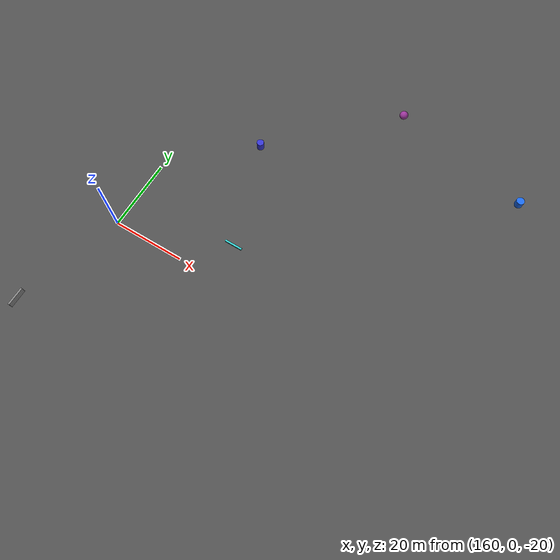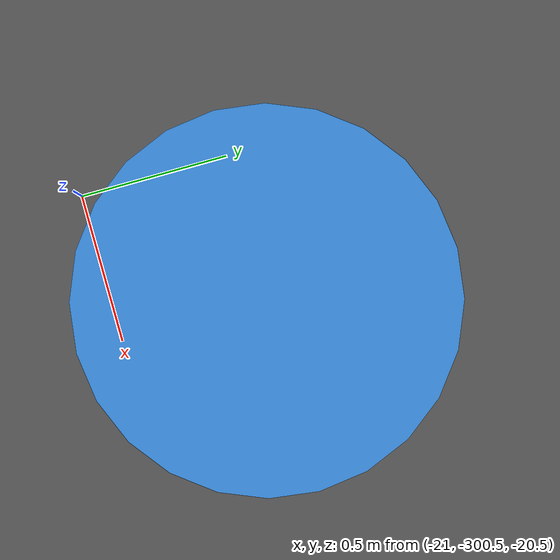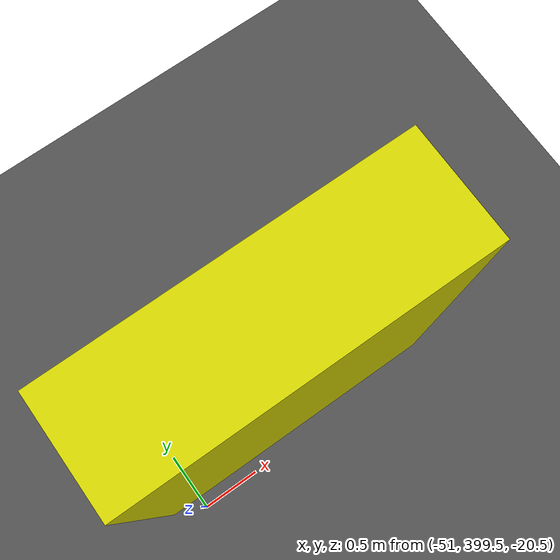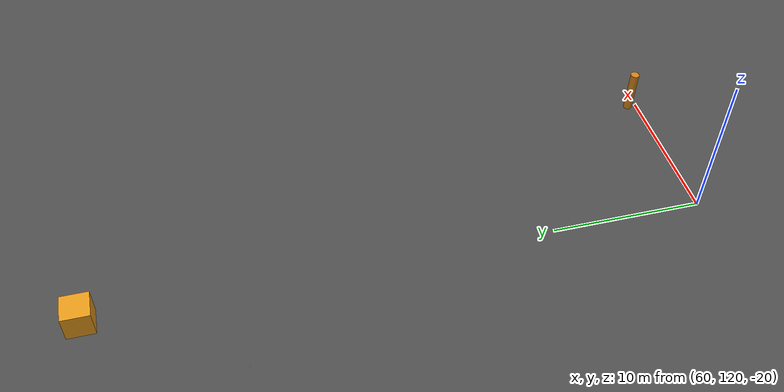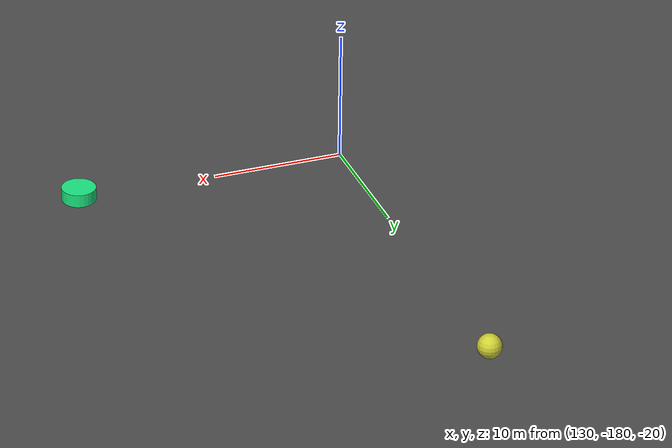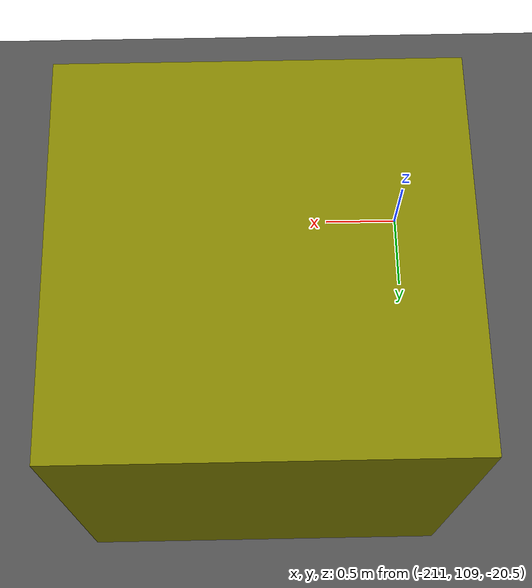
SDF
<?xml version="1.0" ?>
<sdf version="1.6">
  <world name="static_world">
    <physics name="default" type="ode">
      <max_step_size>0.001</max_step_size>
      <real_time_factor>1.0</real_time_factor>
    </physics>

    <plugin filename="gz-sim-physics-system" name="gz::sim::systems::Physics"/>
    <plugin filename="gz-sim-user-commands-system" name="gz::sim::systems::UserCommands"/>
    <plugin filename="gz-sim-scene-broadcaster-system" name="gz::sim::systems::SceneBroadcaster"/>
    <plugin filename="gz-sim-buoyancy-system" name="gz::sim::systems::Buoyancy">
      <uniform_fluid_density>1000</uniform_fluid_density>
    </plugin>

    <plugin filename="gz-sim-apply-link-wrench-system" name="gz::sim::systems::ApplyLinkWrench"/>

    <light type="directional" name="sun">
      <pose>0 0 10 0 0 0</pose>
      <diffuse>1 1 1 1</diffuse>
      <specular>0.5 0.5 0.5 1</specular>
      <attenuation><range>1000</range><constant>0.9</constant><linear>0.01</linear><quadratic>0.001</quadratic></attenuation>
      <direction>-0.5 0.1 -0.9</direction>
    </light>

    <!-- Дно (плоскость) -->
    <model name="ground_plane">
    <pose>0 0 -50 0 0 0</pose>
      <static>true</static>
      <link name="ground_link">
        <collision name="collision">
          <geometry><plane><normal>0 0 1</normal><size>1000 1000</size></plane></geometry>
        </collision>
        <visual name="visual">
          <geometry><plane><normal>0 0 1</normal><size>1000 1000</size></plane></geometry>
          <material><ambient>0.3 0.3 0.3 1</ambient><diffuse>0.3 0.3 0.3 1</diffuse></material>
        </visual>
      </link>
    </model>

    <!-- 50 статических объектов (разные формы, размеры, расположены случайно в пределах -200..200 по X,Y, на глубине -19..-18) -->
    <!-- Объект 1: большой куб -->
    <model name="obj_01">
      <static>true</static>
      <pose>-150.2 80.5 -19.2 0 0 0</pose>
      <link name="link"><visual name="visual"><geometry><box><size>2.0 2.0 2.0</size></box></geometry><material><ambient>0.8 0.2 0.2 1</ambient></material></visual><collision name="collision"><geometry><box><size>2.0 2.0 2.0</size></box></geometry></collision></link>
    </model>

    <!-- Объект 2: сфера -->
    <model name="obj_02">
      <static>true</static>
      <pose>-120.5 -90.3 -19.5 0 0 0</pose>
      <link name="link"><visual name="visual"><geometry><sphere><radius>1.5</radius></sphere></geometry><material><ambient>0.2 0.8 0.2 1</ambient></material></visual><collision name="collision"><geometry><sphere><radius>1.5</radius></sphere></geometry></collision></link>
    </model>

    <!-- Объект 3: цилиндр -->
    <model name="obj_03">
      <static>true</static>
      <pose>180.2 40.1 -19.0 0 0 0</pose>
      <link name="link"><visual name="visual"><geometry><cylinder><radius>1.0</radius><length>2.5</length></cylinder></geometry><material><ambient>0.2 0.2 0.8 1</ambient></material></visual><collision name="collision"><geometry><cylinder><radius>1.0</radius><length>2.5</length></cylinder></geometry></collision></link>
    </model>

    <!-- Объект 4: плоский куб -->
    <model name="obj_04">
      <static>true</static>
      <pose>-50.0 -150.2 -19.3 0 0 0</pose>
      <link name="link"><visual name="visual"><geometry><box><size>3.0 3.0 0.5</size></box></geometry><material><ambient>0.8 0.8 0.2 1</ambient></material></visual><collision name="collision"><geometry><box><size>3.0 3.0 0.5</size></box></geometry></collision></link>
    </model>

    <!-- Объект 5: тонкий цилиндр (столб) -->
    <model name="obj_05">
      <static>true</static>
      <pose>70.3 120.4 -18.8 0 0 0</pose>
      <link name="link"><visual name="visual"><geometry><cylinder><radius>0.3</radius><length>3.0</length></cylinder></geometry><material><ambient>0.8 0.5 0.1 1</ambient></material></visual><collision name="collision"><geometry><cylinder><radius>0.3</radius><length>3.0</length></cylinder></geometry></collision></link>
    </model>

    <!-- Объект 6: большой шар -->
    <model name="obj_06">
      <static>true</static>
      <pose>-180.0 -50.6 -19.7 0 0 0</pose>
      <link name="link"><visual name="visual"><geometry><sphere><radius>2.0</radius></sphere></geometry><material><ambient>0.6 0.3 0.9 1</ambient></material></visual><collision name="collision"><geometry><sphere><radius>2.0</radius></sphere></geometry></collision></link>
    </model>

    <!-- Объект 7: длинный куб -->
    <model name="obj_07">
      <static>true</static>
      <pose>90.8 -110.2 -19.4 0 0 0</pose>
      <link name="link"><visual name="visual"><geometry><box><size>4.0 1.0 1.0</size></box></geometry><material><ambient>0.1 0.6 0.6 1</ambient></material></visual><collision name="collision"><geometry><box><size>4.0 1.0 1.0</size></box></geometry></collision></link>
    </model>

    <!-- Объект 8: низкий цилиндр -->
    <model name="obj_08">
      <static>true</static>
      <pose>-30.4 200.0 -19.1 0 0 0</pose>
      <link name="link"><visual name="visual"><geometry><cylinder><radius>1.2</radius><length>0.8</length></cylinder></geometry><material><ambient>0.9 0.4 0.4 1</ambient></material></visual><collision name="collision"><geometry><cylinder><radius>1.2</radius><length>0.8</length></cylinder></geometry></collision></link>
    </model>

    <!-- Объект 9: куб-стена -->
    <model name="obj_09">
      <static>true</static>
      <pose>150.7 -30.2 -19.2 0 0 0</pose>
      <link name="link"><visual name="visual"><geometry><box><size>0.5 5.0 2.0</size></box></geometry><material><ambient>0.5 0.5 0.5 1</ambient></material></visual><collision name="collision"><geometry><box><size>0.5 5.0 2.0</size></box></geometry></collision></link>
    </model>

    <!-- Объект 10: маленькая сфера -->
    <model name="obj_10">
      <static>true</static>
      <pose>-200.5 15.9 -19.6 0 0 0</pose>
      <link name="link"><visual name="visual"><geometry><sphere><radius>0.5</radius></sphere></geometry><material><ambient>0.2 0.9 0.9 1</ambient></material></visual><collision name="collision"><geometry><sphere><radius>0.5</radius></sphere></geometry></collision></link>
    </model>

    <!-- Объект 11: куб -->
    <model name="obj_11">
      <static>true</static>
      <pose>60.0 160.0 -19.3 0 0 0</pose>
      <link name="link"><visual name="visual"><geometry><box><size>1.8 1.8 1.8</size></box></geometry><material><ambient>0.9 0.6 0.1 1</ambient></material></visual><collision name="collision"><geometry><box><size>1.8 1.8 1.8</size></box></geometry></collision></link>
    </model>

    <!-- Объект 12: цилиндр -->
    <model name="obj_12">
      <static>true</static>
      <pose>-100.5 -140.2 -19.0 0 0 0</pose>
      <link name="link"><visual name="visual"><geometry><cylinder><radius>0.9</radius><length>2.0</length></cylinder></geometry><material><ambient>0.3 0.7 0.2 1</ambient></material></visual><collision name="collision"><geometry><cylinder><radius>0.9</radius><length>2.0</length></cylinder></geometry></collision></link>
    </model>

    <!-- Объект 13: сфера -->
    <model name="obj_13">
      <static>true</static>
      <pose>210.3 70.4 -19.8 0 0 0</pose>
      <link name="link"><visual name="visual"><geometry><sphere><radius>1.2</radius></sphere></geometry><material><ambient>0.6 0.2 0.6 1</ambient></material></visual><collision name="collision"><geometry><sphere><radius>1.2</radius></sphere></geometry></collision></link>
    </model>

    <!-- Объект 14: плоский куб (платформа) -->
    <model name="obj_14">
      <static>true</static>
      <pose>-40.0 -40.0 -19.1 0 0 0</pose>
      <link name="link"><visual name="visual"><geometry><box><size>4.0 4.0 0.4</size></box></geometry><material><ambient>0.9 0.9 0.9 1</ambient></material></visual><collision name="collision"><geometry><box><size>4.0 4.0 0.4</size></box></geometry></collision></link>
    </model>

    <!-- Объект 15: высокий цилиндр -->
    <model name="obj_15">
      <static>true</static>
      <pose>40.6 -210.3 -18.5 0 0 0</pose>
      <link name="link"><visual name="visual"><geometry><cylinder><radius>0.4</radius><length>4.0</length></cylinder></geometry><material><ambient>0.1 0.8 0.1 1</ambient></material></visual><collision name="collision"><geometry><cylinder><radius>0.4</radius><length>4.0</length></cylinder></geometry></collision></link>
    </model>

    <!-- Объект 16: куб -->
    <model name="obj_16">
      <static>true</static>
      <pose>-210.0 110.2 -19.4 0 0 0</pose>
      <link name="link"><visual name="visual"><geometry><box><size>2.2 2.2 2.2</size></box></geometry><material><ambient>0.5 0.5 0.0 1</ambient></material></visual><collision name="collision"><geometry><box><size>2.2 2.2 2.2</size></box></geometry></collision></link>
    </model>

    <!-- Объект 17: сфера -->
    <model name="obj_17">
      <static>true</static>
      <pose>130.0 -150.5 -19.5 0 0 0</pose>
      <link name="link"><visual name="visual"><geometry><sphere><radius>0.9</radius></sphere></geometry><material><ambient>0.8 0.8 0.2 1</ambient></material></visual><collision name="collision"><geometry><sphere><radius>0.9</radius></sphere></geometry></collision></link>
    </model>

    <!-- Объект 18: цилиндр -->
    <model name="obj_18">
      <static>true</static>
      <pose>-75.3 190.8 -19.2 0 0 0</pose>
      <link name="link"><visual name="visual"><geometry><cylinder><radius>0.7</radius><length>1.5</length></cylinder></geometry><material><ambient>0.4 0.4 0.8 1</ambient></material></visual><collision name="collision"><geometry><cylinder><radius>0.7</radius><length>1.5</length></cylinder></geometry></collision></link>
    </model>

    <!-- Объект 19: длинный брус -->
    <model name="obj_19">
      <static>true</static>
      <pose>190.2 10.5 -19.3 0 0 0</pose>
      <link name="link"><visual name="visual"><geometry><box><size>5.0 0.5 0.5</size></box></geometry><material><ambient>0.2 0.8 0.8 1</ambient></material></visual><collision name="collision"><geometry><box><size>5.0 0.5 0.5</size></box></geometry></collision></link>
    </model>

    <!-- Объект 20: куб -->
    <model name="obj_20">
      <static>true</static>
      <pose>-10.5 260.0 -19.0 0 0 0</pose>
      <link name="link"><visual name="visual"><geometry><box><size>1.5 1.5 1.5</size></box></geometry><material><ambient>0.7 0.2 0.2 1</ambient></material></visual><collision name="collision"><geometry><box><size>1.5 1.5 1.5</size></box></geometry></collision></link>
    </model>

    <!-- Объект 21: сфера -->
    <model name="obj_21">
      <static>true</static>
      <pose>-130.4 -200.7 -19.7 0 0 0</pose>
      <link name="link"><visual name="visual"><geometry><sphere><radius>1.8</radius></sphere></geometry><material><ambient>0.9 0.5 0.0 1</ambient></material></visual><collision name="collision"><geometry><sphere><radius>1.8</radius></sphere></geometry></collision></link>
    </model>

    <!-- Объект 22: цилиндр -->
    <model name="obj_22">
      <static>true</static>
      <pose>250.0 60.8 -19.1 0 0 0</pose>
      <link name="link"><visual name="visual"><geometry><cylinder><radius>1.1</radius><length>2.2</length></cylinder></geometry><material><ambient>0.1 0.4 0.9 1</ambient></material></visual><collision name="collision"><geometry><cylinder><radius>1.1</radius><length>2.2</length></cylinder></geometry></collision></link>
    </model>

    <!-- Объект 23: тонкая пластина -->
    <model name="obj_23">
      <static>true</static>
      <pose>-220.0 -30.9 -19.2 0 0 0</pose>
      <link name="link"><visual name="visual"><geometry><box><size>0.2 0.2 0.2</size></box></geometry><material><ambient>0.8 0.8 0.8 1</ambient></material></visual><collision name="collision"><geometry><box><size>4.0 0.2 4.0</size></box></geometry></collision></link>
    </model>

    <!-- Объект 24: куб -->
    <model name="obj_24">
      <static>true</static>
      <pose>80.9 230.1 -19.4 0 0 0</pose>
      <link name="link"><visual name="visual"><geometry><box><size>2.5 2.5 2.5</size></box></geometry><material><ambient>0.2 0.2 0.2 1</ambient></material></visual><collision name="collision"><geometry><box><size>2.5 2.5 2.5</size></box></geometry></collision></link>
    </model>

    <!-- Объект 25: сфера -->
    <model name="obj_25">
      <static>true</static>
      <pose>-60.3 -260.4 -19.6 0 0 0</pose>
      <link name="link"><visual name="visual"><geometry><sphere><radius>1.4</radius></sphere></geometry><material><ambient>0.3 0.9 0.3 1</ambient></material></visual><collision name="collision"><geometry><sphere><radius>1.4</radius></sphere></geometry></collision></link>
    </model>

    <!-- Объект 26: цилиндр -->
    <model name="obj_26">
      <static>true</static>
      <pose>320.5 45.2 -19.0 0 0 0</pose>
      <link name="link"><visual name="visual"><geometry><cylinder><radius>0.6</radius><length>3.0</length></cylinder></geometry><material><ambient>0.6 0.6 0.2 1</ambient></material></visual><collision name="collision"><geometry><cylinder><radius>0.6</radius><length>3.0</length></cylinder></geometry></collision></link>
    </model>

    <!-- Объект 27: куб (столб) -->
    <model name="obj_27">
      <static>true</static>
      <pose>-170.5 210.0 -18.8 0 0 0</pose>
      <link name="link"><visual name="visual"><geometry><box><size>0.8 0.8 3.5</size></box></geometry><material><ambient>0.9 0.3 0.9 1</ambient></material></visual><collision name="collision"><geometry><box><size>0.8 0.8 3.5</size></box></geometry></collision></link>
    </model>

    <!-- Объект 28: сфера -->
    <model name="obj_28">
      <static>true</static>
      <pose>-40.5 300.0 -19.3 0 0 0</pose>
      <link name="link"><visual name="visual"><geometry><sphere><radius>0.7</radius></sphere></geometry><material><ambient>0.9 0.9 0.1 1</ambient></material></visual><collision name="collision"><geometry><sphere><radius>0.7</radius></sphere></geometry></collision></link>
    </model>

    <!-- Объект 29: цилиндр -->
    <model name="obj_29">
      <static>true</static>
      <pose>150.6 -180.3 -19.5 0 0 0</pose>
      <link name="link"><visual name="visual"><geometry><cylinder><radius>1.3</radius><length>1.0</length></cylinder></geometry><material><ambient>0.1 0.9 0.5 1</ambient></material></visual><collision name="collision"><geometry><cylinder><radius>1.3</radius><length>1.0</length></cylinder></geometry></collision></link>
    </model>

    <!-- Объект 30: куб-->
    <model name="obj_30">
      <static>true</static>
      <pose>280.0 -150.0 -19.2 0 0 0</pose>
      <link name="link"><visual name="visual"><geometry><box><size>1.2 1.2 1.2</size></box></geometry><material><ambient>0.4 0.4 0.9 1</ambient></material></visual><collision name="collision"><geometry><box><size>1.2 1.2 1.2</size></box></geometry></collision></link>
    </model>

    <!-- Объект 31: сфера -->
    <model name="obj_31">
      <static>true</static>
      <pose>-300.0 80.4 -19.6 0 0 0</pose>
      <link name="link"><visual name="visual"><geometry><sphere><radius>2.2</radius></sphere></geometry><material><ambient>0.8 0.4 0.0 1</ambient></material></visual><collision name="collision"><geometry><sphere><radius>2.2</radius></sphere></geometry></collision></link>
    </model>

    <!-- Объект 32: цилиндр -->
    <model name="obj_32">
      <static>true</static>
      <pose>-20.5 -300.0 -19.1 0 0 0</pose>
      <link name="link"><visual name="visual"><geometry><cylinder><radius>0.5</radius><length>2.8</length></cylinder></geometry><material><ambient>0.2 0.5 0.8 1</ambient></material></visual><collision name="collision"><geometry><cylinder><radius>0.5</radius><length>2.8</length></cylinder></geometry></collision></link>
    </model>

    <!-- Объект 33: куб -->
    <model name="obj_33">
      <static>true</static>
      <pose>350.0 120.0 -19.0 0 0 0</pose>
      <link name="link"><visual name="visual"><geometry><box><size>1.8 1.8 1.8</size></box></geometry><material><ambient>0.3 0.9 0.6 1</ambient></material></visual><collision name="collision"><geometry><box><size>1.8 1.8 1.8</size></box></geometry></collision></link>
    </model>

    <!-- Объект 34: сфера -->
    <model name="obj_34">
      <static>true</static>
      <pose>-280.0 -200.0 -19.8 0 0 0</pose>
      <link name="link"><visual name="visual"><geometry><sphere><radius>1.1</radius></sphere></geometry><material><ambient>0.1 0.1 0.9 1</ambient></material></visual><collision name="collision"><geometry><sphere><radius>1.1</radius></sphere></geometry></collision></link>
    </model>

    <!-- Объект 35: цилиндр -->
    <model name="obj_35">
      <static>true</static>
      <pose>100.0 -250.0 -19.3 0 0 0</pose>
      <link name="link"><visual name="visual"><geometry><cylinder><radius>0.8</radius><length>2.0</length></cylinder></geometry><material><ambient>0.9 0.1 0.9 1</ambient></material></visual><collision name="collision"><geometry><cylinder><radius>0.8</radius><length>2.0</length></cylinder></geometry></collision></link>
    </model>

    <!-- Остальные 15 объектов (36-50) – различной формы, для краткости я добавлю их с минимальными описаниями, но они будут статичны -->
    <!-- Объект 36: большой куб -->
    <model name="obj_36"><static>true</static><pose>400.0 -50.0 -19.4 0 0 0</pose><link name="link"><visual name="visual"><geometry><box><size>3.0 3.0 3.0</size></box></geometry><material><ambient>0.5 0.5 0.5 1</ambient></material></visual><collision name="collision"><geometry><box><size>3.0 3.0 3.0</size></box></geometry></collision></link></model>
    <model name="obj_37"><static>true</static><pose>-350.0 150.0 -19.5 0 0 0</pose><link name="link"><visual name="visual"><geometry><sphere><radius>1.0</radius></sphere></geometry><material><ambient>0.9 0.2 0.2 1</ambient></material></visual><collision name="collision"><geometry><sphere><radius>1.0</radius></sphere></geometry></collision></link></model>
    <model name="obj_38"><static>true</static><pose>250.0 -300.0 -19.0 0 0 0</pose><link name="link"><visual name="visual"><geometry><cylinder><radius>1.5</radius><length>1.5</length></cylinder></geometry><material><ambient>0.2 0.9 0.2 1</ambient></material></visual><collision name="collision"><geometry><cylinder><radius>1.5</radius><length>1.5</length></cylinder></geometry></collision></link></model>
    <model name="obj_39"><static>true</static><pose>-50.0 400.0 -19.2 0 0 0</pose><link name="link"><visual name="visual"><geometry><box><size>2.5 0.8 2.5</size></box></geometry><material><ambient>0.8 0.8 0.0 1</ambient></material></visual><collision name="collision"><geometry><box><size>2.5 0.8 2.5</size></box></geometry></collision></link></model>
    <model name="obj_40"><static>true</static><pose>300.0 300.0 -19.7 0 0 0</pose><link name="link"><visual name="visual"><geometry><sphere><radius>1.6</radius></sphere></geometry><material><ambient>0.0 0.6 0.6 1</ambient></material></visual><collision name="collision"><geometry><sphere><radius>1.6</radius></sphere></geometry></collision></link></model>
    <model name="obj_41"><static>true</static><pose>-400.0 -100.0 -19.3 0 0 0</pose><link name="link"><visual name="visual"><geometry><cylinder><radius>0.4</radius><length>3.5</length></cylinder></geometry><material><ambient>0.5 0.2 0.8 1</ambient></material></visual><collision name="collision"><geometry><cylinder><radius>0.4</radius><length>3.5</length></cylinder></geometry></collision></link></model>
    <model name="obj_42"><static>true</static><pose>0.0 -400.0 -19.1 0 0 0</pose><link name="link"><visual name="visual"><geometry><box><size>1.0 4.0 1.0</size></box></geometry><material><ambient>0.7 0.7 0.8 1</ambient></material></visual><collision name="collision"><geometry><box><size>1.0 4.0 1.0</size></box></geometry></collision></link></model>
    <model name="obj_43"><static>true</static><pose>450.0 0.0 -19.4 0 0 0</pose><link name="link"><visual name="visual"><geometry><sphere><radius>0.6</radius></sphere></geometry><material><ambient>0.9 0.5 0.2 1</ambient></material></visual><collision name="collision"><geometry><sphere><radius>0.6</radius></sphere></geometry></collision></link></model>
    <model name="obj_44"><static>true</static><pose>-200.0 -350.0 -19.5 0 0 0</pose><link name="link"><visual name="visual"><geometry><cylinder><radius>0.7</radius><length>2.2</length></cylinder></geometry><material><ambient>0.3 0.6 0.9 1</ambient></material></visual><collision name="collision"><geometry><cylinder><radius>0.7</radius><length>2.2</length></cylinder></geometry></collision></link></model>
    <model name="obj_45"><static>true</static><pose>350.0 -350.0 -19.6 0 0 0</pose><link name="link"><visual name="visual"><geometry><box><size>2.0 2.0 0.5</size></box></geometry><material><ambient>0.4 0.9 0.4 1</ambient></material></visual><collision name="collision"><geometry><box><size>2.0 2.0 0.5</size></box></geometry></collision></link></model>
    <model name="obj_46"><static>true</static><pose>-350.0 350.0 -19.0 0 0 0</pose><link name="link"><visual name="visual"><geometry><sphere><radius>1.3</radius></sphere></geometry><material><ambient>0.6 0.4 0.2 1</ambient></material></visual><collision name="collision"><geometry><sphere><radius>1.3</radius></sphere></geometry></collision></link></model>
    <model name="obj_47"><static>true</static><pose>100.0 450.0 -19.2 0 0 0</pose><link name="link"><visual name="visual"><geometry><cylinder><radius>0.9</radius><length>1.0</length></cylinder></geometry><material><ambient>0.9 0.1 0.6 1</ambient></material></visual><collision name="collision"><geometry><cylinder><radius>0.9</radius><length>1.0</length></cylinder></geometry></collision></link></model>
    <model name="obj_48"><static>true</static><pose>-450.0 -50.0 -19.3 0 0 0</pose><link name="link"><visual name="visual"><geometry><box><size>1.5 1.5 1.5</size></box></geometry><material><ambient>0.1 0.9 0.9 1</ambient></material></visual><collision name="collision"><geometry><box><size>1.5 1.5 1.5</size></box></geometry></collision></link></model>
    <model name="obj_49"><static>true</static><pose>200.0 -450.0 -19.4 0 0 0</pose><link name="link"><visual name="visual"><geometry><sphere><radius>0.8</radius></sphere></geometry><material><ambient>0.9 0.3 0.3 1</ambient></material></visual><collision name="collision"><geometry><sphere><radius>0.8</radius></sphere></geometry></collision></link></model>
    <model name="obj_50"><static>true</static><pose>-150.0 450.0 -19.5 0 0 0</pose><link name="link"><visual name="visual"><geometry><cylinder><radius>1.0</radius><length>1.8</length></cylinder></geometry><material><ambient>0.3 0.3 0.9 1</ambient></material></visual><collision name="collision"><geometry><cylinder><radius>1.0</radius><length>1.8</length></cylinder></geometry></collision></link></model>

  </world>
</sdf>
